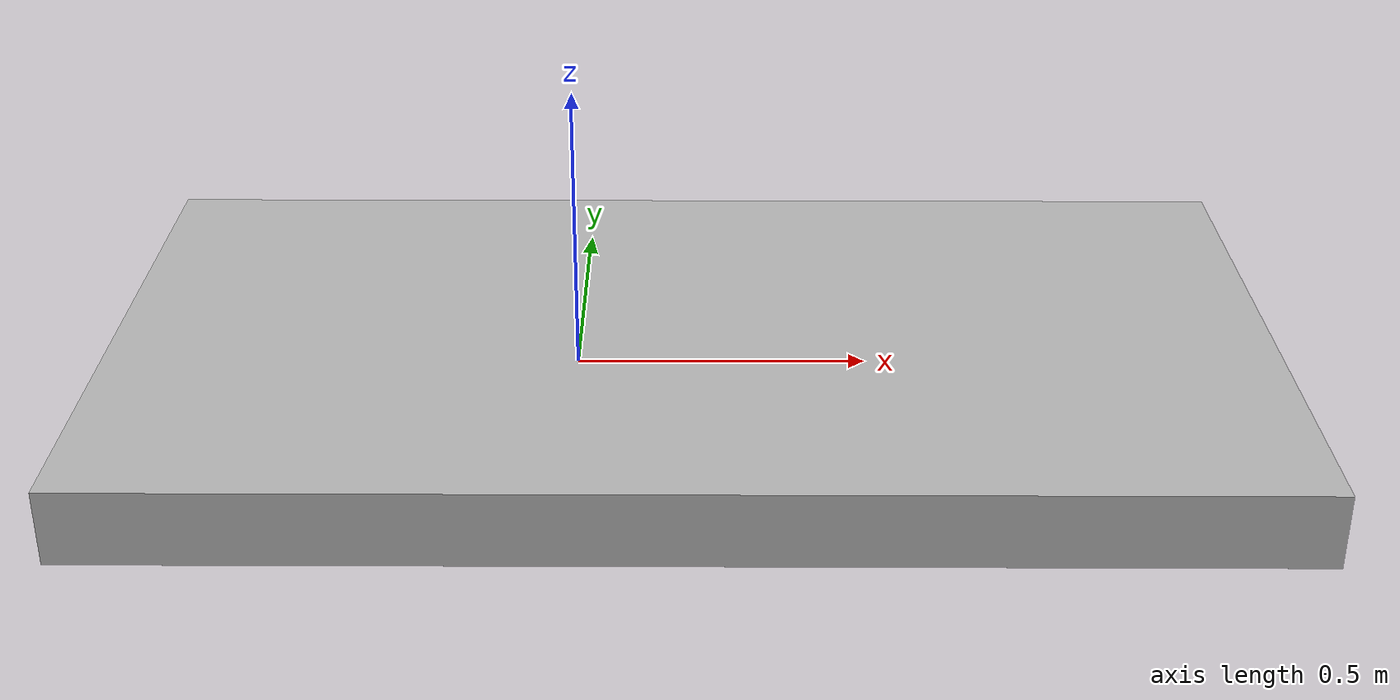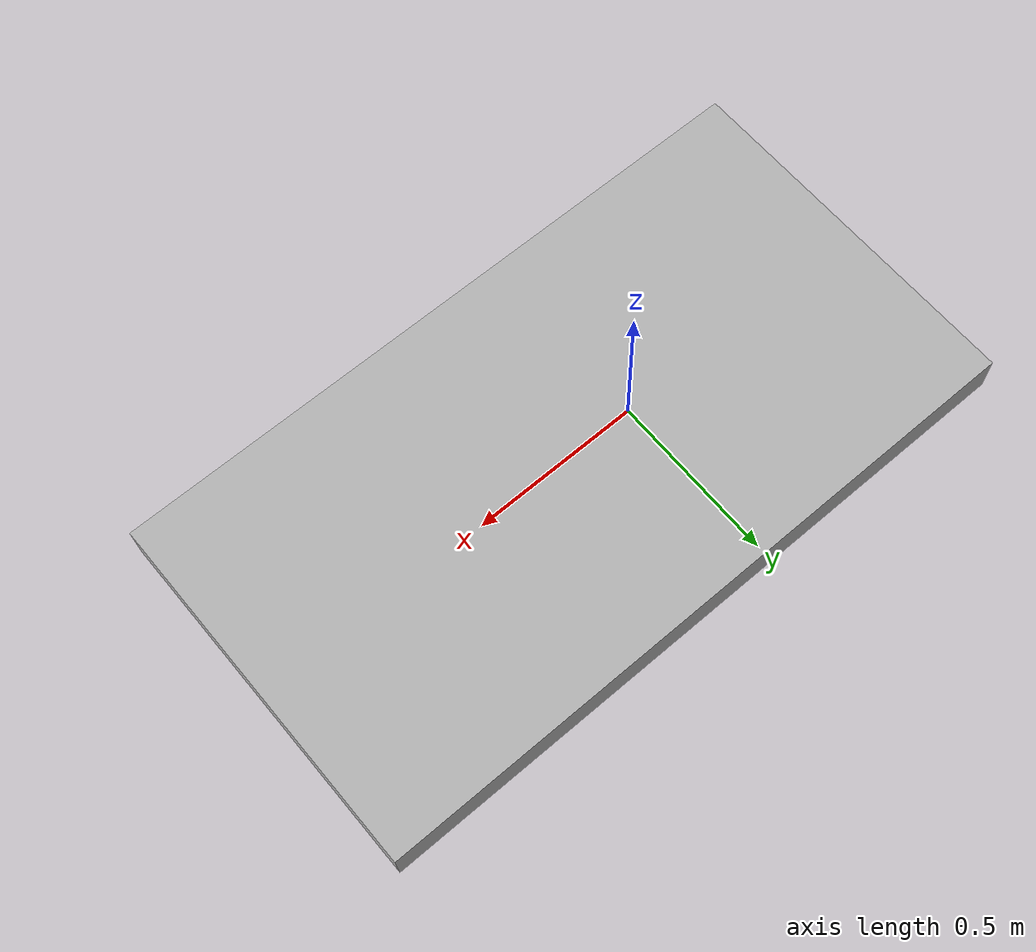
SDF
<?xml version="1.0" ?>
<sdf version="1.10">
  <world name="fluid_added_mass_pose_reset_repro">
    <physics name="default_physics" type="dart">
      <max_step_size>0.05</max_step_size>
      <real_time_factor>1</real_time_factor>
    </physics>
    <gravity>0 0 0</gravity>
    <plugin filename="gz-sim-physics-system" name="gz::sim::systems::Physics"/>
    <plugin filename="gz-sim-user-commands-system" name="gz::sim::systems::UserCommands"/>
    <plugin filename="gz-sim-scene-broadcaster-system" name="gz::sim::systems::SceneBroadcaster"/>
    <plugin filename="gz-sim-apply-link-wrench-system" name="gz::sim::systems::ApplyLinkWrench"/>

    <model name="otter_fluid_added_mass_repro">
      <pose>0 0 0 0 0 0</pose>
      <link name="base_link">
        <inertial>
          <pose>0.2 0 0 0 0 0</pose>
          <mass>55</mass>
          <inertia>
            <ixx>5.9074583333</ixx>
            <iyy>18.8947916667</iyy>
            <izz>14.66</izz>
            <ixy>0</ixy>
            <ixz>0</ixz>
            <iyz>0</iyz>
          </inertia>
          <fluid_added_mass>
            <xx>5.5</xx>
            <yy>82.5</yy>
            <yr>-16.5</yr>
            <zz>82.5</zz>
            <zq>16.5</zq>
            <qq>3.3</qq>
            <rr>10.8</rr>
          </fluid_added_mass>
        </inertial>
        <collision name="hull_collision">
          <pose>0.2 0 0 0 0 0</pose>
          <geometry>
            <box>
              <size>2 1.08 0.13</size>
            </box>
          </geometry>
        </collision>
        <visual name="hull_visual">
          <pose>0.2 0 0 0 0 0</pose>
          <geometry>
            <box>
              <size>2 1.08 0.13</size>
            </box>
          </geometry>
        </visual>
      </link>
    </model>
  </world>
</sdf>
